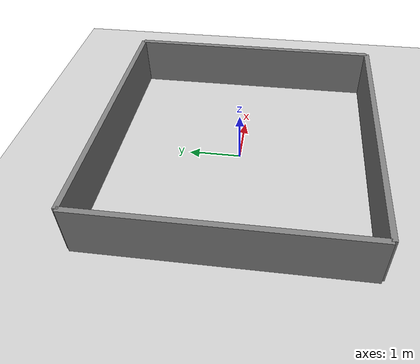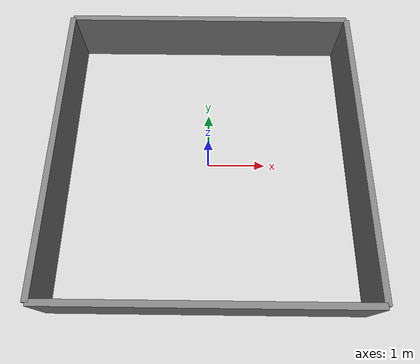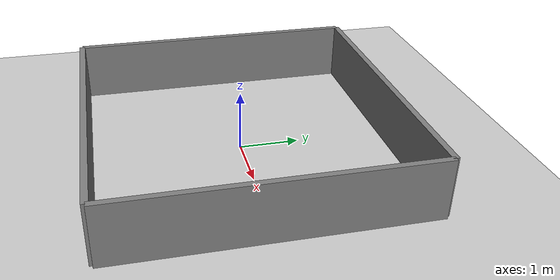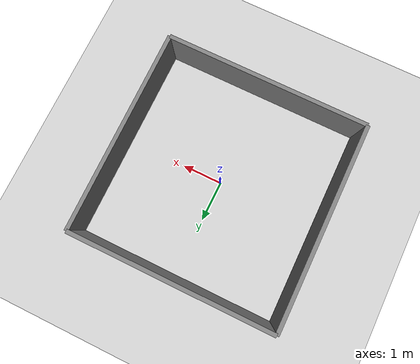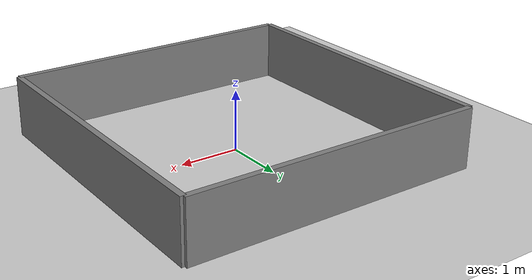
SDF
<?xml version="1.0"?>
<sdf version="1.6">
  <world name="sweepi_world">
    <!-- Physics Engine -->
    <physics type="ode">
      <max_step_size>0.001</max_step_size>
      <real_time_factor>1</real_time_factor>
      <real_time_update_rate>1000</real_time_update_rate>
      <ode>
        <solver>
          <type>quick</type>
          <iters>150</iters>
          <precon_iters>0</precon_iters>
          <sor>1.400000</sor>
          <use_dynamic_moi_rescaling>1</use_dynamic_moi_rescaling>
        </solver>
        <constraints>
          <cfm>0.00001</cfm>
          <erp>0.2</erp>
          <contact_max_correcting_vel>2000.000000</contact_max_correcting_vel>
          <contact_surface_layer>0.01000</contact_surface_layer>
        </constraints>
      </ode>
    </physics>

    <!-- Gazebo Systems Plugins (CRITICAL for sensors) -->
    <plugin filename="gz-sim-physics-system" name="gz::sim::systems::Physics"/>
    <plugin filename="gz-sim-user-commands-system" name="gz::sim::systems::UserCommands"/>
    <plugin filename="gz-sim-scene-broadcaster-system" name="gz::sim::systems::SceneBroadcaster"/>
    <plugin filename="gz-sim-contact-system" name="gz::sim::systems::Contact"/>
    <!-- CRITICAL: Sensors system with ogre2 renderer for GPU LIDAR -->
    <plugin filename="gz-sim-sensors-system" name="gz::sim::systems::Sensors">
      <render_engine>ogre2</render_engine>
    </plugin>
    <plugin filename="gz-sim-imu-system" name="gz::sim::systems::Imu"/>

    <!-- Gravity and Magnetic Field -->
    <gravity>0 0 -9.81</gravity>
    <magnetic_field>5.5645e-06 2.28758e-05 -4.23884e-05</magnetic_field>

    <!-- Scene Settings -->
    <scene>
      <ambient>0.4 0.4 0.4 1</ambient>
      <background>0.7 0.7 0.7 1</background>
      <shadows>true</shadows>
    </scene>

    <!-- Ground Plane -->
    <model name="ground_plane">
      <static>true</static>
      <link name="link">
        <collision name="collision">
          <geometry>
            <plane>
              <normal>0 0 1</normal>
              <size>100 100</size>
            </plane>
          </geometry>
          <surface>
            <friction>
              <ode/>
            </friction>
            <bounce/>
            <contact/>
          </surface>
        </collision>
        <visual name="visual">
          <geometry>
            <plane>
              <normal>0 0 1</normal>
              <size>100 100</size>
            </plane>
          </geometry>
          <material>
            <ambient>0.8 0.8 0.8 1</ambient>
            <diffuse>0.8 0.8 0.8 1</diffuse>
            <specular>0.8 0.8 0.8 1</specular>
          </material>
        </visual>
      </link>
    </model>

    <!-- Wall 1 (North) -->
    <model name="wall_north">
      <static>true</static>
      <link name="link">
        <collision name="collision">
          <geometry>
            <box>
              <size>5 0.1 1.0</size>
            </box>
          </geometry>
        </collision>
        <visual name="visual">
          <geometry>
            <box>
              <size>5 0.1 1.0</size>
            </box>
          </geometry>
          <material>
            <ambient>0.5 0.5 0.5 1</ambient>
            <diffuse>0.5 0.5 0.5 1</diffuse>
            <specular>0.5 0.5 0.5 1</specular>
          </material>
        </visual>
      </link>
      <pose>0 2.5 0.5 0 0 0</pose>
    </model>

    <!-- Wall 2 (South) -->
    <model name="wall_south">
      <static>true</static>
      <link name="link">
        <collision name="collision">
          <geometry>
            <box>
              <size>5 0.1 1.0</size>
            </box>
          </geometry>
        </collision>
        <visual name="visual">
          <geometry>
            <box>
              <size>5 0.1 1.0</size>
            </box>
          </geometry>
          <material>
            <ambient>0.5 0.5 0.5 1</ambient>
            <diffuse>0.5 0.5 0.5 1</diffuse>
            <specular>0.5 0.5 0.5 1</specular>
          </material>
        </visual>
      </link>
      <pose>0 -2.5 0.5 0 0 0</pose>
    </model>

    <!-- Wall 3 (East) -->
    <model name="wall_east">
      <static>true</static>
      <link name="link">
        <collision name="collision">
          <geometry>
            <box>
              <size>0.1 5 1.0</size>
            </box>
          </geometry>
        </collision>
        <visual name="visual">
          <geometry>
            <box>
              <size>0.1 5 1.0</size>
            </box>
          </geometry>
          <material>
            <ambient>0.5 0.5 0.5 1</ambient>
            <diffuse>0.5 0.5 0.5 1</diffuse>
            <specular>0.5 0.5 0.5 1</specular>
          </material>
        </visual>
      </link>
      <pose>2.5 0 0.5 0 0 0</pose>
    </model>

    <!-- Wall 4 (West) -->
    <model name="wall_west">
      <static>true</static>
      <link name="link">
        <collision name="collision">
          <geometry>
            <box>
              <size>0.1 5 1.0</size>
            </box>
          </geometry>
        </collision>
        <visual name="visual">
          <geometry>
            <box>
              <size>0.1 5 1.0</size>
            </box>
          </geometry>
          <material>
            <ambient>0.5 0.5 0.5 1</ambient>
            <diffuse>0.5 0.5 0.5 1</diffuse>
            <specular>0.5 0.5 0.5 1</specular>
          </material>
        </visual>
      </link>
      <pose>-2.5 0 0.5 0 0 0</pose>
    </model>

    <!-- Sun Light -->
    <light name="sun" type="directional">
      <pose>0 0 10 0 0 0</pose>
      <cast_shadows>true</cast_shadows>
      <intensity>1</intensity>
      <direction>-0.5 0.1 -0.9</direction>
      <diffuse>0.8 0.8 0.8 1</diffuse>
      <specular>0.2 0.2 0.2 1</specular>
      <attenuation>
        <range>1000</range>
        <linear>0.01</linear>
        <constant>0.9</constant>
        <quadratic>0.001</quadratic>
      </attenuation>
    </light>

  </world>
</sdf>
